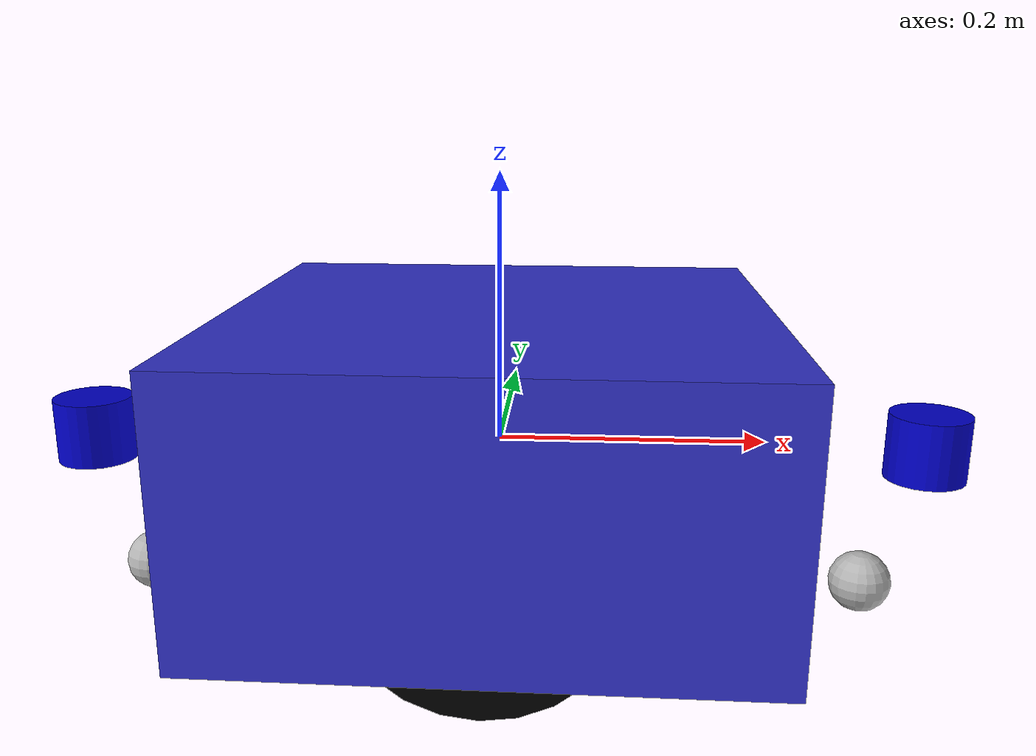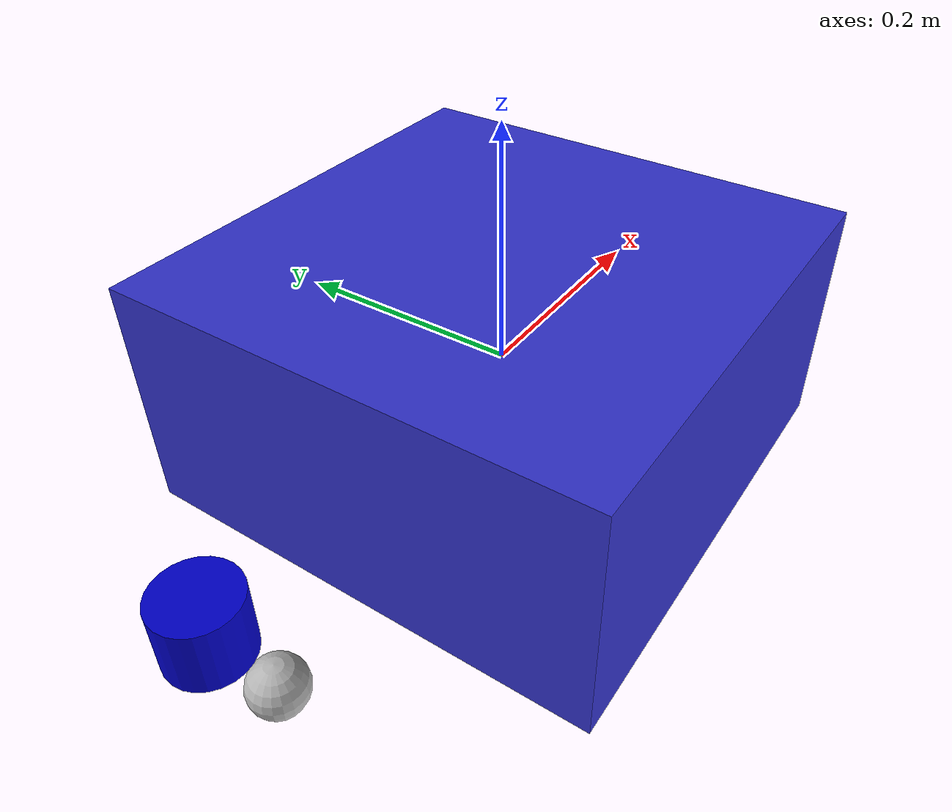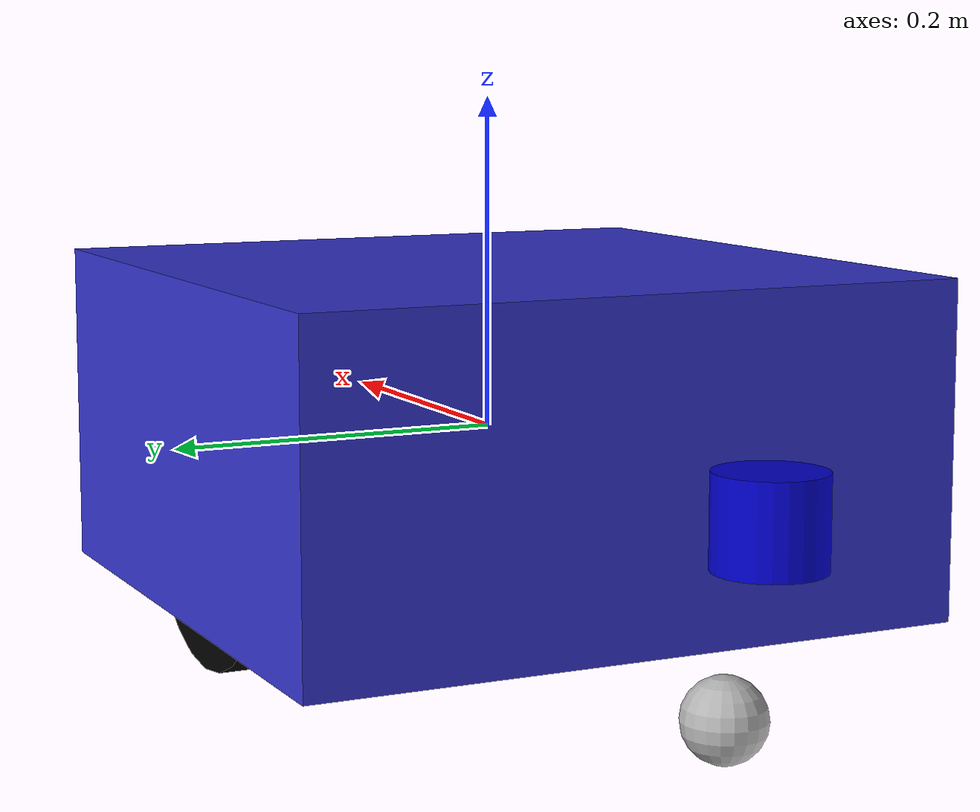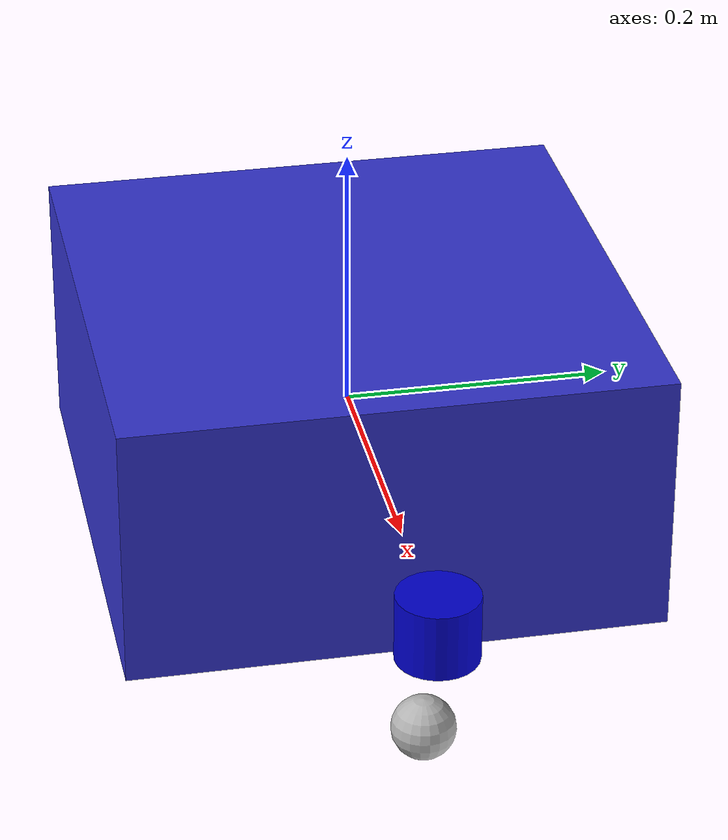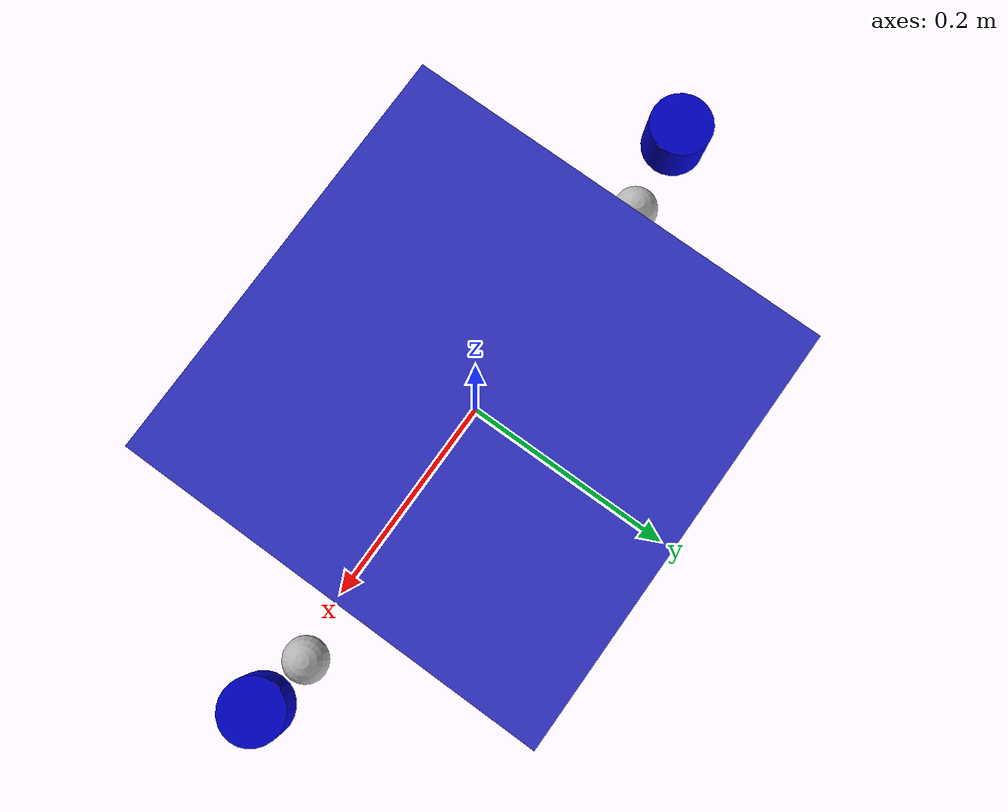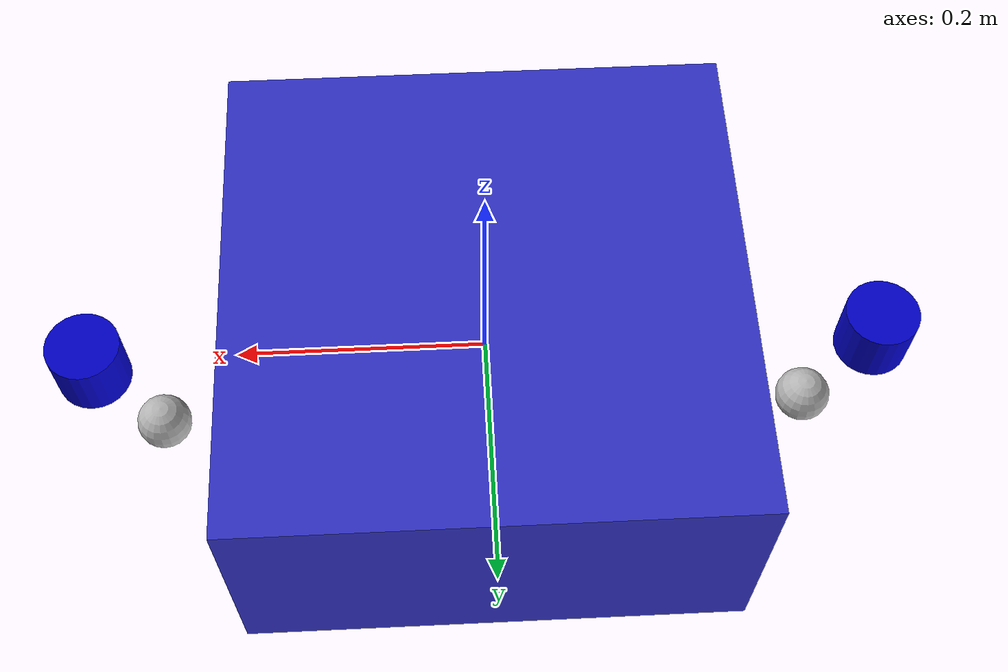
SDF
<?xml version="1.0" ?>
<sdf version="1.6">
  <model name="sendbooster_agv">
        <link name="base_footprint"/>

    <!-- Base Link -->
    <link name="base_link">
      <pose>0 0 0 0 0 0</pose>
      <inertial>
        <mass>5.0</mass>
        <inertia>
          <ixx>0.1</ixx>
          <iyy>0.1</iyy>
          <izz>0.1</izz>
        </inertia>
      </inertial>
      <visual name="base_visual">
        <pose>0 0 0 0 0 0</pose>
        <geometry>
          <box>
            <size>0.4 0.4 0.2</size>
          </box>
        </geometry>
        <material>
          <ambient>0.2 0.2 0.8 1</ambient>
          <diffuse>0.2 0.2 0.8 1</diffuse>
        </material>
      </visual>
      <collision name="base_collision">
        <geometry>
          <box>
            <size>0.4 0.4 0.2</size>
          </box>
        </geometry>
      </collision>
    </link>
    <joint name="base_joint" type="fixed">
      <parent>base_footprint</parent>
      <child>base_link</child>
      <pose>0.0 0.0 0.2465 0 0 0</pose>
    </joint>
    <!-- Left Wheel -->
  <link name="wheel_left_link">
    <pose>0 0.16 -0.035 1.5708 0 0</pose>

    <inertial>
      <mass>0.5</mass>
      <inertia>
        <ixx>0.001</ixx>
        <iyy>0.001</iyy>
        <izz>0.001</izz>
      </inertia>
    </inertial>

    <visual name="wheel_left_visual">
      <geometry>
        <cylinder>
          <radius>0.0965</radius>
          <length>0.048</length>
        </cylinder>
      </geometry>
      <material>
        <ambient>0 0 0 1</ambient>
        <diffuse>0 0 0 1</diffuse>
      </material>
    </visual>

    <collision name="wheel_left_collision">
      <geometry>
        <cylinder>
          <radius>0.0965</radius>
          <length>0.048</length>
        </cylinder>
      </geometry>
    </collision>
  </link>
<link name="caster_front_link">
  <pose>-0.28 0 -0.1115 0 0 0</pose>
  <inertial>
    <mass>0.2</mass>
    <inertia>
      <ixx>0.0005</ixx>
      <iyy>0.0005</iyy>
      <izz>0.0005</izz>
    </inertia>
  </inertial>

  <collision name="caster_collision">
    <geometry>
      <sphere>
        <radius>0.0235</radius>
      </sphere>
    </geometry>
    <surface>
      <friction>
        <ode>
          <mu>0.0</mu>
          <mu2>0.0</mu2>
        </ode>
      </friction>
    </surface>
  </collision>

  <visual name="caster_visual">
    <geometry>
      <sphere>
        <radius>0.0235</radius>
      </sphere>
    </geometry>
  </visual>
</link>

<joint name="caster_front_joint" type="fixed">
  <parent>base_link</parent>
  <child>caster_front_link</child>
</joint>

<link name="caster_back_link">
  <pose>0.28 0 -0.1115 0 0 0</pose>
  <inertial>
    <mass>0.2</mass>
    <inertia>
      <ixx>0.0005</ixx>
      <iyy>0.0005</iyy>
      <izz>0.0005</izz>
    </inertia>
  </inertial>

  <collision name="caster_collision">
    <geometry>
      <sphere>
        <radius>0.0235</radius>
      </sphere>
    </geometry>
    <surface>
      <friction>
        <ode>
          <mu>0.0</mu>
          <mu2>0.0</mu2>
        </ode>
      </friction>
    </surface>
  </collision>

  <visual name="caster_visual">
    <geometry>
      <sphere>
        <radius>0.0235</radius>
      </sphere>
    </geometry>
  </visual>
</link>

<joint name="caster_back_joint" type="fixed">
  <parent>base_link</parent>
  <child>caster_back_link</child>
</joint>

    <!-- Right Wheel -->
    <link name="wheel_right_link">
      <pose>0 -0.16 -0.035 1.5708 0 0</pose>

      <inertial>
        <mass>0.5</mass>
        <inertia>
          <ixx>0.001</ixx>
          <iyy>0.001</iyy>
          <izz>0.001</izz>
        </inertia>
      </inertial>

      <visual name="wheel_right_visual">
        <geometry>
          <cylinder>
            <radius>0.0965</radius>
            <length>0.048</length>
          </cylinder>
        </geometry>
        <material>
          <ambient>0 0 0 1</ambient>
          <diffuse>0 0 0 1</diffuse>
        </material>
      </visual>

      <collision name="wheel_right_collision">
        <geometry>
          <cylinder>
            <radius>0.0965</radius>
            <length>0.048</length>
          </cylinder>
        </geometry>
      </collision>
    </link>

    <!-- Wheel Joints -->
    <joint name="wheel_left_joint" type="revolute">
      <parent>base_link</parent>
      <child>wheel_left_link</child>
      <axis>
        <xyz>0 0 -1</xyz>
        <limit>
          <lower>-1000</lower>
          <upper>1000</upper>
        </limit>
      </axis>
    </joint>

    <joint name="wheel_right_joint" type="revolute">
      <parent>base_link</parent>
      <child>wheel_right_link</child>
      <axis>
        <xyz>0 0 -1</xyz>
        <limit>
          <lower>-1000</lower>
          <upper>1000</upper>
        </limit>
      </axis>
    </joint>

    <!-- IMU -->
    <link name="imu_link">
      <pose>0 0 0.1 0 0 0</pose>
      <sensor name="sendbooster_imu" type="imu">
        <always_on>true</always_on>
        <update_rate>100</update_rate>
        <imu>
          <angular_velocity>
            <x>
              <noise type="gaussian">
                <mean>0.0</mean>
                <stddev>2e-4</stddev>
              </noise>
            </x>
            <y>
              <noise type="gaussian">
                <mean>0.0</mean>
                <stddev>2e-4</stddev>
              </noise>
            </y>
            <z>
              <noise type="gaussian">
                <mean>0.0</mean>
                <stddev>2e-4</stddev>
              </noise>
            </z>
          </angular_velocity>
          <linear_acceleration>
            <x>
              <noise type="gaussian">
                <mean>0.0</mean>
                <stddev>1.7e-2</stddev>
              </noise>
            </x>
            <y>
              <noise type="gaussian">
                <mean>0.0</mean>
                <stddev>1.7e-2</stddev>
              </noise>
            </y>
            <z>
              <noise type="gaussian">
                <mean>0.0</mean>
                <stddev>1.7e-2</stddev>
              </noise>
            </z>
          </linear_acceleration>
        </imu>
        <plugin name="sendbooster_imu_plugin" filename="libgazebo_ros_imu_sensor.so">
          <ros>
            <remapping>~/out:=imu</remapping>
          </ros>
          <initial_orientation_as_reference>false</initial_orientation_as_reference>
          <frame_name>imu_link</frame_name>
        </plugin>
      </sensor>
    </link>
    <joint name="imu_joint" type="fixed">
      <parent>base_link</parent>
      <child>imu_link</child>
      <pose>0 0 0.1 0 0 0</pose>
    </joint>

    <!-- LiDAR -->
    <link name="base_scan">
      <pose>0.32 0 0 0 0 0</pose>
      <visual name="lidar_visual">
        <geometry>
          <cylinder>
            <radius>0.03</radius>
            <length>0.05</length>
          </cylinder>
        </geometry>
        <material>
          <ambient>0 0 0.8 1</ambient>
          <diffuse>0 0 0.8 1</diffuse>
        </material>
      </visual>
          <!-- RPLIDAR A2M8 Front (180° FOV) -->
          <sensor name="rplidar_a2m8_front" type="ray">
        <always_on>true</always_on>
        <visualize>true</visualize>
        <pose>0 0 0 0 0 0</pose>
        <update_rate>10</update_rate>
        <ray>
          <scan>
            <horizontal>
              <samples>400</samples>
              <resolution>1.000000</resolution>
              <min_angle>-1.5708</min_angle>
              <max_angle>1.5708</max_angle>
            </horizontal>
          </scan>
          <range>
            <min>0.15</min>
            <max>12.0</max>
            <resolution>0.005</resolution>
          </range>
          <noise>
            <type>gaussian</type>
            <mean>0.0</mean>
            <stddev>0.01</stddev>
          </noise>
        </ray>
        <plugin name="sendbooster_agv_laserscan" filename="libgazebo_ros_ray_sensor.so">
          <ros>
            <remapping>~/out:=scan</remapping>
          </ros>
          <output_type>sensor_msgs/LaserScan</output_type>
          <frame_name>base_scan</frame_name>
        </plugin>
      </sensor>
</link>
    <joint name="lidar_joint" type="fixed">
      <parent>base_link</parent>
      <child>base_scan</child>
      <pose>0.2 0 0.15 0 0 0</pose>
    </joint>

    <link name="base_scan_back">
      <pose>-0.32 0 0 0 0 0</pose>
      <visual name="lidar_visual_back">
        <geometry>
          <cylinder>
            <radius>0.03</radius>
            <length>0.05</length>
          </cylinder>
        </geometry>
        <material>
          <ambient>0 0 0.8 1</ambient>
          <diffuse>0 0 0.8 1</diffuse>
        </material>
      </visual>
          <!-- RPLIDAR A2M8 Back (180° FOV, rotated to face backward) -->
          <sensor name="rplidar_a2m8_back" type="ray">
        <always_on>true</always_on>
        <visualize>true</visualize>
        <pose>0 0 0 0 0 3.14159</pose>
        <update_rate>10</update_rate>
        <ray>
          <scan>
            <horizontal>
              <samples>400</samples>
              <resolution>1.000000</resolution>
              <min_angle>-1.5708</min_angle>
              <max_angle>1.5708</max_angle>
            </horizontal>
          </scan>
          <range>
            <min>0.15</min>
            <max>12.0</max>
            <resolution>0.005</resolution>
          </range>
          <noise>
            <type>gaussian</type>
            <mean>0.0</mean>
            <stddev>0.01</stddev>
          </noise>
        </ray>
        <plugin name="sendbooster_agv_laserscan_back" filename="libgazebo_ros_ray_sensor.so">
          <ros>
            <remapping>~/out:=scan2</remapping>
          </ros>
          <output_type>sensor_msgs/LaserScan</output_type>
          <frame_name>base_scan_back</frame_name>
        </plugin>
      </sensor>
</link>
    <joint name="lidar_joint_back" type="fixed">
      <parent>base_link</parent>
      <child>base_scan_back</child>
      <pose>0.2 0 0.15 0 0 0</pose>
    </joint>
    <!-- Differential Drive Plugin -->
    <plugin name="sendbooster_diff_drive" filename="libgazebo_ros_diff_drive.so">
      <ros>
      </ros>

      <update_rate>30</update_rate>

      <!-- wheels -->
      <left_joint>wheel_left_joint</left_joint>
      <right_joint>wheel_right_joint</right_joint>

      <wheel_separation>0.064</wheel_separation>
      <wheel_diameter>0.193</wheel_diameter>

<!-- limits -->
      <max_wheel_torque>20</max_wheel_torque>
      <max_wheel_acceleration>1.0</max_wheel_acceleration>

      <command_topic>cmd_vel</command_topic>

      <!-- output -->
      <publish_odom>true</publish_odom>
      <publish_odom_tf>false</publish_odom_tf>  <!-- EKF will publish odom->base_footprint TF -->
      <publish_wheel_tf>false</publish_wheel_tf>

      <odometry_topic>odom</odometry_topic>
      <odometry_frame>odom</odometry_frame>
      <robot_base_frame>base_footprint</robot_base_frame>
    </plugin>
    <plugin name="sendbooster_joint_state" filename="libgazebo_ros_joint_state_publisher.so">
      <ros>
        <remapping>~/out:=joint_states</remapping>
      </ros>
      <update_rate>30</update_rate>
      <joint_name>wheel_left_joint</joint_name>
      <joint_name>wheel_right_joint</joint_name>
    </plugin>
  </model>
</sdf>
